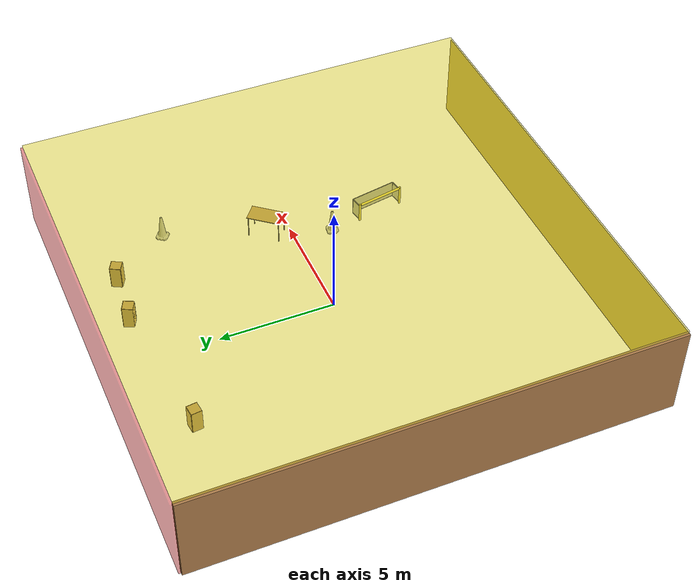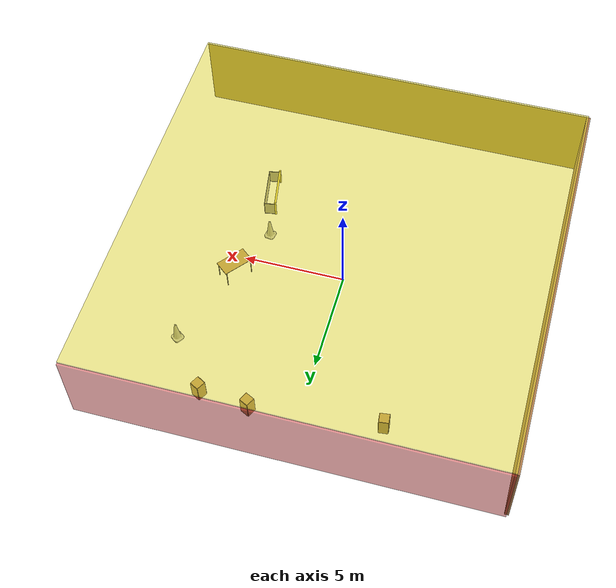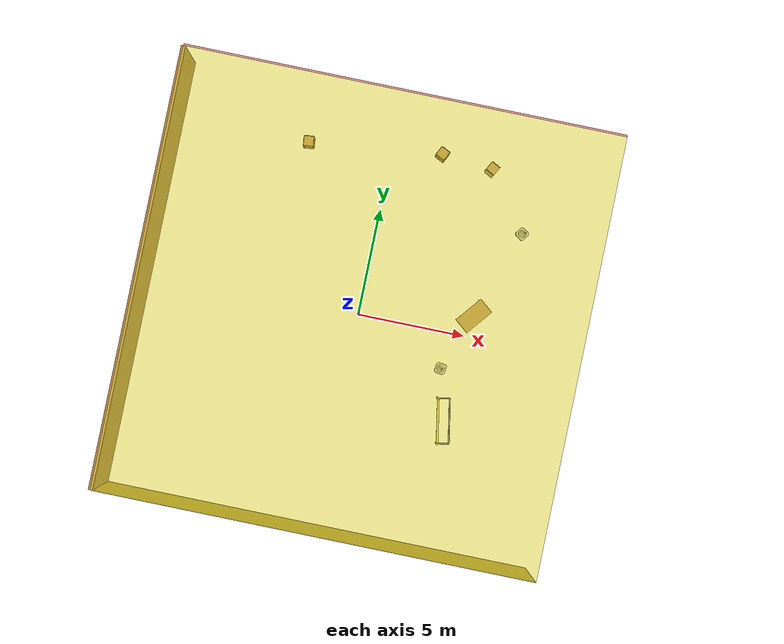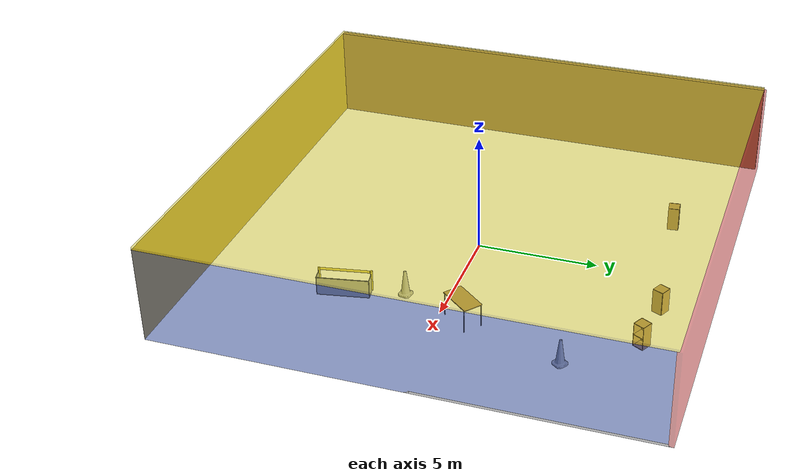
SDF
<sdf version="1.4">
 <world name="default">
  <physics type="ode">
   <max_step_size>0.001</max_step_size>
   <real_time_factor>1</real_time_factor>
   <real_time_update_rate>1000</real_time_update_rate>
   <gravity>0 0 -9.8</gravity>
  </physics>
  <scene><ambient>0.4 0.4 0.4 1</ambient><background>0.7 0.7 0.7 1</background><shadows>1</shadows></scene>
  <model name="Surrounding">
   <static>1</static>
   <link name="Ceiling">
    <collision name="Ceiling_Collision"><geometry><box><size>20 20 0.1</size></box></geometry></collision>
    <visual name="Ceiling_Visual">
     <geometry><box><size>20 20 0.1</size></box></geometry>
     <material>
      <script>
       <uri>file://media/materials/scripts/gazebo.material</uri>
       <name>Gazebo/YellowTransparent</name>
      </script>
     </material>
    </visual>
    <pose>0 0 4.05 0 0 0</pose>
   </link>
   <link name="Wall_South">
    <collision name="Wall_South_Collision">
     <geometry><box><size>20 0 4</size></box></geometry>
     <pose>0 0 2 0 -0 0</pose>
    </collision>
    <visual name="Wall_South_Visual">
     <pose>0 0 2 0 -0 0</pose>
     <geometry><box><size>20 0 4</size></box></geometry>
     <material>
      <script><uri>file://media/materials/scripts/gazebo.material</uri><name>Gazebo/Gold</name></script>
     </material>
    </visual>
    <velocity_decay><linear>0</linear><angular>0</angular></velocity_decay>
    <pose>0 -10 0 0 -0 0</pose>
   </link>
   <link name="Wall_East">
    <collision name="Wall_21_Collision">
     <geometry><box><size>20 0 4</size></box></geometry>
     <pose>0 0 2 0 -0 0</pose>
    </collision>
    <visual name="Wall_21_Visual">
     <pose>0 0 2 0 -0 0</pose>
     <geometry><box><size>20 0 4</size></box></geometry>
     <material>
      <script><uri>file://media/materials/scripts/gazebo.material</uri><name>Gazebo/BlueTransparent</name></script>
     </material>
    </visual>
    <velocity_decay><linear>0</linear><angular>0</angular></velocity_decay>
    <pose>10 0 0 0 -0 1.5708</pose>
   </link>
   <link name="Wall_North">
    <collision name="Wall_22_Collision">
     <geometry><box><size>20 0.2 4</size></box></geometry>
     <pose>0 0 2 0 -0 0</pose>
    </collision>
    <visual name="Wall_22_Visual">
     <pose>0 0 2 0 -0 0</pose>
     <geometry><box><size>20 0.2 4</size></box></geometry>
     <material>
      <script><uri>file://media/materials/scripts/gazebo.material</uri><name>Gazebo/RedTransparent</name></script>
     </material>
    </visual>
    <velocity_decay><linear>0</linear><angular>0</angular></velocity_decay>
    <pose>0 10 0 0 -0 0</pose>
   </link>
   <link name="Wall_West">
    <collision name="Wall_23_Collision">
     <geometry><box><size>20 0.2 4</size></box></geometry>
     <pose>0 0 2 0 -0 0</pose>
    </collision>
    <visual name="Wall_23_Visual">
     <pose>0 0 2 0 -0 0</pose>
     <geometry><box><size>20 0.2 4</size></box></geometry>
     <material>
      <script><uri>file://media/materials/scripts/gazebo.material</uri><name>Gazebo/WoodPallet</name></script>
     </material>
    </visual>
    <velocity_decay><linear>0</linear><angular>0</angular></velocity_decay>
    <pose>-10 0 0 0 0 -1.5708</pose>
   </link>
   <link name="Ground_link">
    <collision name="collision">
     <pose>0 0 .05 0 -0 0</pose>
     <geometry><box><size>20 20 0.1</size></box></geometry>
    </collision>
    <visual name="visual">
     <pose>0 0 .05 0 -0 0</pose>
     <geometry><box><size>20 20 0.1</size></box></geometry>
     <material>
      <script><uri>file://media/materials/scripts/gazebo.material</uri><name>Gazebo/GreyTransparent</name></script>
     </material>
    </visual>
   </link>
   <static>1</static>
  </model>
  <spherical_coordinates>
   <surface_model>EARTH_WGS84</surface_model>
   <latitude_deg>0</latitude_deg>
   <longitude_deg>0</longitude_deg>
   <elevation>0</elevation>
   <heading_deg>0</heading_deg>
  </spherical_coordinates>
  <light name="lightball_0" type="diffuse">
   <diffuse>0.8 0.8 0.8 1</diffuse>
   <specular>0.2 0.2 0.2 1</specular>
   <attenuation>
    <range>100</range>
    <constant>0.7</constant>
    <linear>0.01</linear>
    <quadratic>0.001</quadratic>
   </attenuation>
   <direction>-0.5 0.1 -0.9</direction>
   <pose>5.13138936212 5.96405721145 1.05754786445 0 0 0</pose>
  </light>
  <light name="lightball_1" type="diffuse">
   <diffuse>0.8 0.8 0.8 1</diffuse>
   <specular>0.2 0.2 0.2 1</specular>
   <attenuation>
    <range>100</range>
    <constant>0.7</constant>
    <linear>0.01</linear>
    <quadratic>0.001</quadratic>
   </attenuation>
   <direction>-0.5 0.1 -0.9</direction>
   <pose>-8.79789261465 7.50450205857 2.47586917937 0 0 0</pose>
  </light>
  <light name="lightball_2" type="diffuse">
   <diffuse>0.8 0.8 0.8 1</diffuse>
   <specular>0.2 0.2 0.2 1</specular>
   <attenuation>
    <range>100</range>
    <constant>0.7</constant>
    <linear>0.01</linear>
    <quadratic>0.001</quadratic>
   </attenuation>
   <direction>-0.5 0.1 -0.9</direction>
   <pose>1.46321548645 -0.0712314825069 1.13834581684 0 0 0</pose>
  </light>
  <light name="lightball_3" type="diffuse">
   <diffuse>0.8 0.8 0.8 1</diffuse>
   <specular>0.2 0.2 0.2 1</specular>
   <attenuation>
    <range>100</range>
    <constant>0.7</constant>
    <linear>0.01</linear>
    <quadratic>0.001</quadratic>
   </attenuation>
   <direction>-0.5 0.1 -0.9</direction>
   <pose>-0.553646106757 0.454382182755 1.252257332 0 0 0</pose>
  </light>
  <light name="lightball_4" type="diffuse">
   <diffuse>0.8 0.8 0.8 1</diffuse>
   <specular>0.2 0.2 0.2 1</specular>
   <attenuation>
    <range>100</range>
    <constant>0.7</constant>
    <linear>0.01</linear>
    <quadratic>0.001</quadratic>
   </attenuation>
   <direction>-0.5 0.1 -0.9</direction>
   <pose>4.54896740883 3.16869937964 0.549335165834 0 0 0</pose>
  </light>
  <include><uri>model://cabinet</uri><pose>-3.89947399308 7.37049103733 0 0 0 1.6807577202</pose></include>
  <include><uri>model://cabinet</uri><pose>2.29450345316 8.06059688973 0 0 0 1.11342950128</pose></include>
  <include>
   <uri>model://robocup_3Dsim_goal</uri>
   <pose>4.55476962278 -4.09531004941 0 0 0 0.175828355436</pose>
  </include>
  <include>
   <uri>model://construction_cone</uri>
   <pose>4.24086364106 -1.69602556444 0 0 0 1.42124636576</pose>
  </include>
  <include><uri>model://table</uri><pose>5.20068223014 0.992808820578 0 0 0 0.88794593223</pose></include>
  <include><uri>model://cabinet</uri><pose>4.7064452457 7.84196987971 0 0 0 2.64836360406</pose></include>
  <include>
   <uri>model://construction_cone</uri>
   <pose>6.71053365715 5.23505475289 0 0 0 0.942137341693</pose>
  </include>
 </world>
</sdf>

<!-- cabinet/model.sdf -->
<sdf version="1.5">
  <model name="cabinet">
    <static>true</static>
    <link name="cabinet_bottom_plate">
      <inertial>
        <pose>0 0 -1 0 0 0</pose>
        <inertia>
          <ixx>2.050000</ixx>
          <ixy>0</ixy>
          <ixz>0</ixz>
          <iyy>2.050000</iyy>
          <iyz>0</iyz>
          <izz>2.050000</izz>
        </inertia>
        <mass>25.000000</mass>
      </inertial>
      <collision name="cabinet_bottom_plate_geom">
        <pose>0 0 0.010000 0 0 0</pose>
        <geometry>
          <box>
            <size>0.450000 0.450000 0.020000</size>
          </box>
        </geometry>
      </collision>
      <visual name="cabinet_bottom_plate_geom_visual">
        <pose>0 0 0.010000 0 0 0</pose>
        <geometry>
          <box>
            <size>0.450000 0.450000 0.020000</size>
          </box>
        </geometry>
        <material>
          <script>
            <uri>model://media/materials/scripts/gazebo.material</uri>
            <name>Gazebo/Wood</name>
          </script>
        </material>
      </visual>
      <collision name="cabinet_bottom_plate_geom_cabinet_back_plate">
        <pose>0.235000 0 0.510000 0 0 0</pose>
        <geometry>
          <box>
            <size>0.020000 0.450000 1.020000</size>
          </box>
        </geometry>
      </collision>
      <visual name="cabinet_bottom_plate_geom_cabinet_back_plate_visual">
        <pose>0.235000 0 0.510000 0 0 0</pose>
        <geometry>
          <box>
            <size>0.020000 0.450000 1.020000</size>
          </box>
        </geometry>
        <material>
          <script>
            <uri>model://media/materials/scripts/gazebo.material</uri>
            <name>Gazebo/Wood</name>
          </script>
        </material>
      </visual>
      <collision name="cabinet_bottom_plate_geom_cabinet_left_plate">
        <pose>0 0.235000 0.510000 0 0 0</pose>
        <geometry>
          <box>
            <size>0.450000 0.020000 1.020000</size>
          </box>
        </geometry>
      </collision>
      <visual name="cabinet_bottom_plate_geom_cabinet_left_plate_visual">
        <pose>0 0.235000 0.510000 0 0 0</pose>
        <geometry>
          <box>
            <size>0.450000 0.020000 1.020000</size>
          </box>
        </geometry>
        <material>
          <script>
            <uri>model://media/materials/scripts/gazebo.material</uri>
            <name>Gazebo/Wood</name>
          </script>
        </material>
      </visual>
      <collision name="cabinet_bottom_plate_geom_cabinet_middle_plate">
        <pose>0 0 0.510000 0 0 0</pose>
        <geometry>
          <box>
            <size>0.450000 0.450000 0.020000</size>
          </box>
        </geometry>
      </collision>
      <visual name="cabinet_bottom_plate_geom_cabinet_middle_plate_visual">
        <pose>0 0 0.510000 0 0 0</pose>
        <geometry>
          <box>
            <size>0.450000 0.450000 0.020000</size>
          </box>
        </geometry>
        <material>
          <script>
            <uri>model://media/materials/scripts/gazebo.material</uri>
            <name>Gazebo/Wood</name>
          </script>
        </material>
      </visual>
      <collision name="cabinet_bottom_plate_geom_cabinet_right_plate">
        <pose>0 -0.235000 0.510000 0 0 0</pose>
        <geometry>
          <box>
            <size>0.450000 0.020000 1.020000</size>
          </box>
        </geometry>
      </collision>
      <visual name="cabinet_bottom_plate_geom_cabinet_right_plate_visual">
        <pose>0 -0.235000 0.510000 0 0 0</pose>
        <geometry>
          <box>
            <size>0.450000 0.020000 1.020000</size>
          </box>
        </geometry>
        <material>
          <script>
            <uri>model://media/materials/scripts/gazebo.material</uri>
            <name>Gazebo/Wood</name>
          </script>
        </material>
      </visual>
      <collision name="cabinet_bottom_plate_geom_cabinet_top_plate">
        <pose>0 0 1.010000 0 0 0</pose>
        <geometry>
          <box>
            <size>0.450000 0.450000 0.020000</size>
          </box>
        </geometry>
      </collision>
      <visual name="cabinet_bottom_plate_geom_cabinet_top_plate_visual">
        <pose>0 0 1.010000 0 0 0</pose>
        <geometry>
          <box>
            <size>0.450000 0.450000 0.020000</size>
          </box>
        </geometry>
        <material>
          <script>
            <uri>model://media/materials/scripts/gazebo.material</uri>
            <name>Gazebo/Wood</name>
          </script>
        </material>
      </visual>
    </link>
  </model>
</sdf>

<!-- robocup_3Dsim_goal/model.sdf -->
<sdf version="1.5">
  <model name="robocup_3d_goal">
    <static>true</static>
    <link name="left_post">
      <pose>0 1.05 0.45 0 0 0</pose>
      <collision name="collision">
        <geometry>
          <cylinder>
            <radius>0.05</radius>
            <length>0.9</length>
          </cylinder>
        </geometry>
      </collision>
      <visual name="visual">
        <geometry>
          <cylinder>
            <radius>0.05</radius>
            <length>0.9</length>
          </cylinder>
        </geometry>
        <material>
          <script>
            <uri>file://media/materials/scripts/gazebo.material</uri>
            <name>Gazebo/ZincYellow</name>
          </script>
        </material>
      </visual>
    </link>
    <link name="left_support_horiz_lower">
      <pose>0.30 1.05 0.01 0 0 0</pose>
      <collision name="collision">
        <geometry>
          <box>
            <size>0.50 0.02 0.02</size>
          </box>
        </geometry>
      </collision>
      <visual name="visual">
        <geometry>
          <box>
            <size>0.50 0.02 0.02</size>
          </box>
        </geometry>
        <material>
          <script>
            <uri>file://media/materials/scripts/gazebo.material</uri>
            <name>Gazebo/White</name>
          </script>
        </material>
      </visual>
    </link>
    <link name="left_support_horiz_upper">
      <pose>0.30 1.05 0.79 0 0 0</pose>
      <collision name="collision">
        <geometry>
          <box>
            <size>0.50 0.02 0.02</size>
          </box>
        </geometry>
      </collision>
      <visual name="visual">
        <geometry>
          <box>
            <size>0.50 0.02 0.02</size>
          </box>
        </geometry>
        <material>
          <script>
            <uri>file://media/materials/scripts/gazebo.material</uri>
            <name>Gazebo/White</name>
          </script>
        </material>
      </visual>
    </link>
    <link name="left_support_vertical">
      <pose>0.56 1.05 0.4 0 1.5708 0</pose>
      <collision name="collision">
        <geometry>
          <box>
            <size>0.80 0.02 0.02</size>
          </box>
        </geometry>
      </collision>
      <visual name="visual">
        <geometry>
          <box>
            <size>0.80 0.02 0.02</size>
          </box>
        </geometry>
        <material>
          <script>
            <uri>file://media/materials/scripts/gazebo.material</uri>
            <name>Gazebo/White</name>
          </script>
        </material>
      </visual>
    </link>
    <link name="right_support_horiz_lower">
      <pose>0.30 -1.05 0.01 0 0 0</pose>
      <collision name="collision">
        <geometry>
          <box>
            <size>0.50 0.02 0.02</size>
          </box>
        </geometry>
      </collision>
      <visual name="visual">
        <geometry>
          <box>
            <size>0.50 0.02 0.02</size>
          </box>
        </geometry>
        <material>
          <script>
            <uri>file://media/materials/scripts/gazebo.material</uri>
            <name>Gazebo/White</name>
          </script>
        </material>
      </visual>
    </link>
    <link name="right_support_horiz_upper">
      <pose>0.30 -1.05 0.79 0 0 0</pose>
      <collision name="collision">
        <geometry>
          <box>
            <size>0.50 0.02 0.02</size>
          </box>
        </geometry>
      </collision>
      <visual name="visual">
        <geometry>
          <box>
            <size>0.50 0.02 0.02</size>
          </box>
        </geometry>
        <material>
          <script>
            <uri>file://media/materials/scripts/gazebo.material</uri>
            <name>Gazebo/White</name>
          </script>
        </material>
      </visual>
    </link>
    <link name="right_support_vertical">
      <pose>0.56 -1.05 0.4 0 1.5708 0</pose>
      <collision name="collision">
        <geometry>
          <box>
            <size>0.80 0.02 0.02</size>
          </box>
        </geometry>
      </collision>
      <visual name="visual">
        <geometry>
          <box>
            <size>0.80 0.02 0.02</size>
          </box>
        </geometry>
        <material>
          <script>
            <uri>file://media/materials/scripts/gazebo.material</uri>
            <name>Gazebo/White</name>
          </script>
        </material>
      </visual>
    </link>
    <link name="center_support_horiz_lower">
      <pose>0.56 0 0.01 0 1.5708 0</pose>
      <collision name="collision">
        <geometry>
          <box>
            <size>0.02 2.08 0.02</size>
          </box>
        </geometry>
      </collision>
      <visual name="visual">
        <geometry>
          <box>
            <size>0.02 2.08 0.02</size>
          </box>
        </geometry>
        <material>
          <script>
            <uri>file://media/materials/scripts/gazebo.material</uri>
            <name>Gazebo/White</name>
          </script>
        </material>
      </visual>
    </link>
    <link name="center_support_horiz_upper">
      <pose>0.56 0 0.79 0 1.5708 0</pose>
      <collision name="collision">
        <geometry>
          <box>
            <size>0.02 2.08 0.02</size>
          </box>
        </geometry>
      </collision>
      <visual name="visual">
        <geometry>
          <box>
            <size>0.02 2.08 0.02</size>
          </box>
        </geometry>
        <material>
          <script>
            <uri>file://media/materials/scripts/gazebo.material</uri>
            <name>Gazebo/White</name>
          </script>
        </material>
      </visual>
    </link>
    <link name="right_post">
      <pose>0 -1.05 0.45 0 0 0</pose>
      <collision name="collision">
        <geometry>
          <cylinder>
            <radius>0.05</radius>
            <length>0.9</length>
          </cylinder>
        </geometry>
      </collision>
      <visual name="visual">
        <geometry>
          <cylinder>
            <radius>0.05</radius>
            <length>0.9</length>
          </cylinder>
        </geometry>
        <material>
          <script>
            <uri>file://media/materials/scripts/gazebo.material</uri>
            <name>Gazebo/ZincYellow</name>
          </script>
        </material>
      </visual>
    </link>
    <link name="crossbar">
      <pose>0 0 0.85 1.57 1.57 0</pose>
      <collision name="collision">
        <geometry>
          <cylinder>
            <radius>0.05</radius>
            <length>2.0</length>
          </cylinder>
        </geometry>
      </collision>
      <visual name="visual">
        <geometry>
          <cylinder>
            <radius>0.05</radius>
            <length>2.0</length>
          </cylinder>
        </geometry>
        <material>
          <script>
            <uri>file://media/materials/scripts/gazebo.material</uri>
            <name>Gazebo/ZincYellow</name>
          </script>
        </material>
      </visual>
    </link>
    <link name="center_net">
      <pose>0.56 0 0.40 0 0 0</pose>
      <collision name="collision">
        <geometry>
          <box>
            <size>0.01 2.1 0.80</size>
          </box>
        </geometry>
      </collision>
      <visual name="visual">
        <geometry>
          <box>
            <size>0.01 2.1 0.80</size>
          </box>
        </geometry>
        <material>
          <script>
            <uri>model://../model_source/models/robocup09_spl_field/materials/scripts/</uri>
            <uri>model://../model_source/models/robocup09_spl_field/materials/textures/</uri>
            <name>RoboCup/Net</name>
          </script>
        </material>
      </visual>
    </link>
    <link name="left_net">
      <pose>0.30 1.05 0.40 0 0 0</pose>
      <collision name="collision">
        <geometry>
          <box>
            <size>0.50 0.01 0.76</size>
          </box>
        </geometry>
      </collision>
      <visual name="visual">
        <geometry>
          <box>
            <size>0.50 0.01 0.76</size>
          </box>
        </geometry>
        <material>
          <script>
            <uri>model://../model_source/models/robocup09_spl_field/materials/scripts/</uri>
            <uri>model://../model_source/models/robocup09_spl_field/materials/textures/</uri>
            <name>RoboCup/Net</name>
          </script>
        </material>
      </visual>
    </link>
    <link name="right_net">
      <pose>0.30 -1.05 0.40 0 0 0</pose>
      <collision name="collision">
        <geometry>
          <box>
            <size>0.50 0.01 0.76</size>
          </box>
        </geometry>
      </collision>
      <visual name="visual">
        <geometry>
          <box>
            <size>0.50 0.01 0.76</size>
          </box>
        </geometry>
        <material>
          <script>
            <uri>model://../model_source/models/robocup09_spl_field/materials/scripts/</uri>
            <uri>model://../model_source/models/robocup09_spl_field/materials/textures/</uri>
            <name>RoboCup/Net</name>
          </script>
        </material>
      </visual>
    </link>
  </model>
</sdf>

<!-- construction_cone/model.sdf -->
<sdf version="1.5">
  <model name="Construction Cone">
    <link name="link">
      <collision name="collision">
        <geometry>
          <mesh>
            <scale>10 10 10</scale>
            <uri>file://isr-testbed/construction_cone/meshes/construction_cone.dae</uri>
          </mesh>
        </geometry>
      </collision>
      <visual name="visual">
        <geometry>
          <mesh>
            <scale>10 10 10</scale>
            <uri>file://isr-testbed/construction_cone/meshes/construction_cone.dae</uri>
          </mesh>
        </geometry>
      </visual>
    </link>
  </model>
</sdf>

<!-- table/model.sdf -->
<sdf version="1.5">
  <model name="table">
    <static>true</static>
    <link name="link">
      <collision name="surface">
        <pose>0 0 1.0 0 0 0</pose>
        <geometry>
          <box>
            <size>1.5 0.8 0.03</size>
          </box>
        </geometry>
        <surface>
          <friction>
            <ode>
              <mu>0.6</mu>
              <mu2>0.6</mu2>
            </ode>
          </friction>
        </surface>
      </collision>
      <visual name="visual1">
        <pose>0 0 1.0 0 0 0</pose>
        <geometry>
          <box>
            <size>1.5 0.8 0.03</size>
          </box>
        </geometry>
        <material>
          <script>
            <uri>model://media/materials/scripts/gazebo.material</uri>
            <name>Gazebo/Wood</name>
          </script>
        </material>
      </visual>
      <collision name="front_left_leg">
        <pose>0.68 0.38 0.5 0 0 0</pose>
        <geometry>
          <cylinder>
            <radius>0.02</radius>
            <length>1.0</length>
          </cylinder>
        </geometry>
      </collision>
      <visual name="front_left_leg">
        <pose>0.68 0.38 0.5 0 0 0</pose>
        <geometry>
          <cylinder>
            <radius>0.02</radius>
            <length>1.0</length>
          </cylinder>
        </geometry>
        <material>
          <script>
            <uri>model://media/materials/scripts/gazebo.material</uri>
            <name>Gazebo/Grey</name>
          </script>
        </material>
      </visual>
      <collision name="front_right_leg">
        <pose>0.68 -0.38 0.5 0 0 0</pose>
        <geometry>
          <cylinder>
            <radius>0.02</radius>
            <length>1.0</length>
          </cylinder>
        </geometry>
      </collision>
      <visual name="front_right_leg">
        <pose>0.68 -0.38 0.5 0 0 0</pose>
        <geometry>
          <cylinder>
            <radius>0.02</radius>
            <length>1.0</length>
          </cylinder>
        </geometry>
        <material>
          <script>
            <uri>model://media/materials/scripts/gazebo.material</uri>
            <name>Gazebo/Grey</name>
          </script>
        </material>
      </visual>
      <collision name="back_right_leg">
        <pose>-0.68 -0.38 0.5 0 0 0</pose>
        <geometry>
          <cylinder>
            <radius>0.02</radius>
            <length>1.0</length>
          </cylinder>
        </geometry>
      </collision>
      <visual name="back_right_leg">
        <pose>-0.68 -0.38 0.5 0 0 0</pose>
        <geometry>
          <cylinder>
            <radius>0.02</radius>
            <length>1.0</length>
          </cylinder>
        </geometry>
        <material>
          <script>
            <uri>model://media/materials/scripts/gazebo.material</uri>
            <name>Gazebo/Grey</name>
          </script>
        </material>
      </visual>
      <collision name="back_left_leg">
        <pose>-0.68 0.38 0.5 0 0 0</pose>
        <geometry>
          <cylinder>
            <radius>0.02</radius>
            <length>1.0</length>
          </cylinder>
        </geometry>
      </collision>
      <visual name="back_left_leg">
        <pose>-0.68 0.38 0.5 0 0 0</pose>
        <geometry>
          <cylinder>
            <radius>0.02</radius>
            <length>1.0</length>
          </cylinder>
        </geometry>
        <material>
          <script>
            <uri>model://media/materials/scripts/gazebo.material</uri>
            <name>Gazebo/Grey</name>
          </script>
        </material>
      </visual>
    </link>
  </model>
</sdf>
